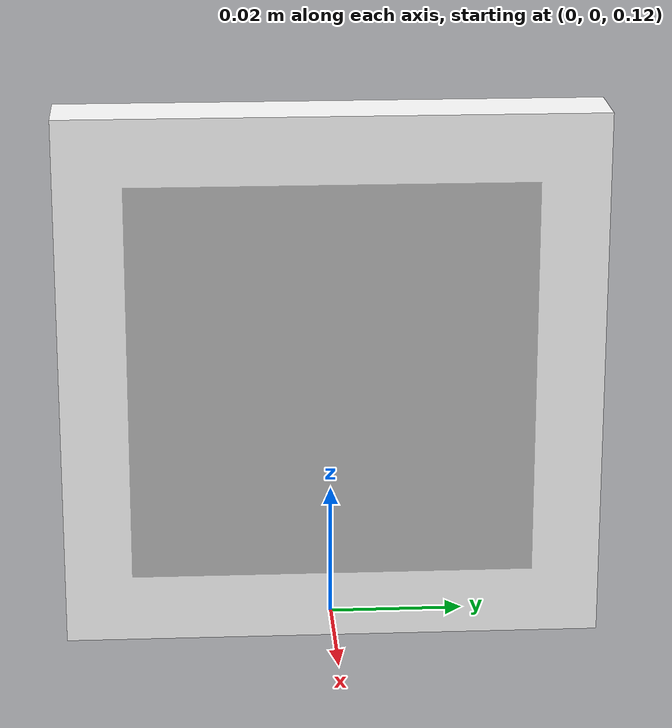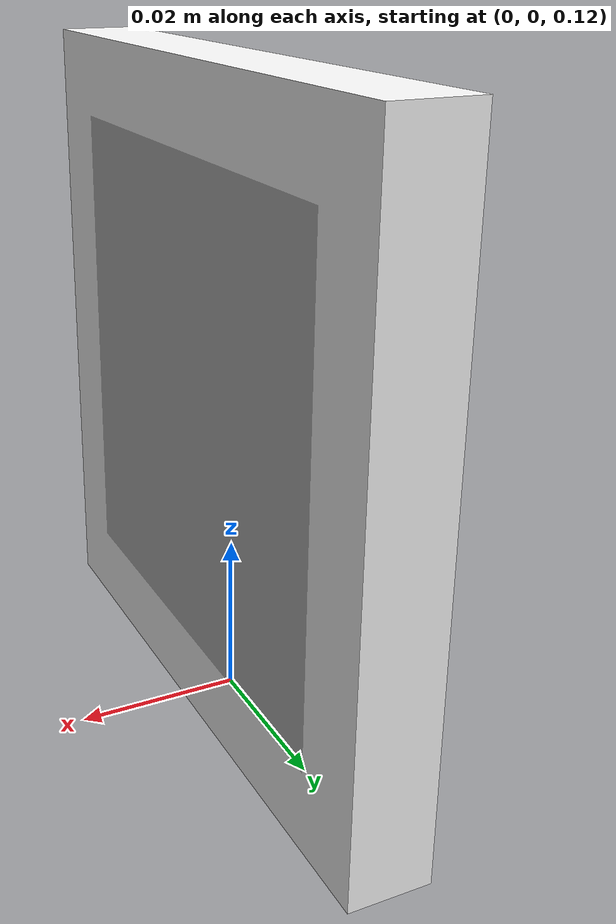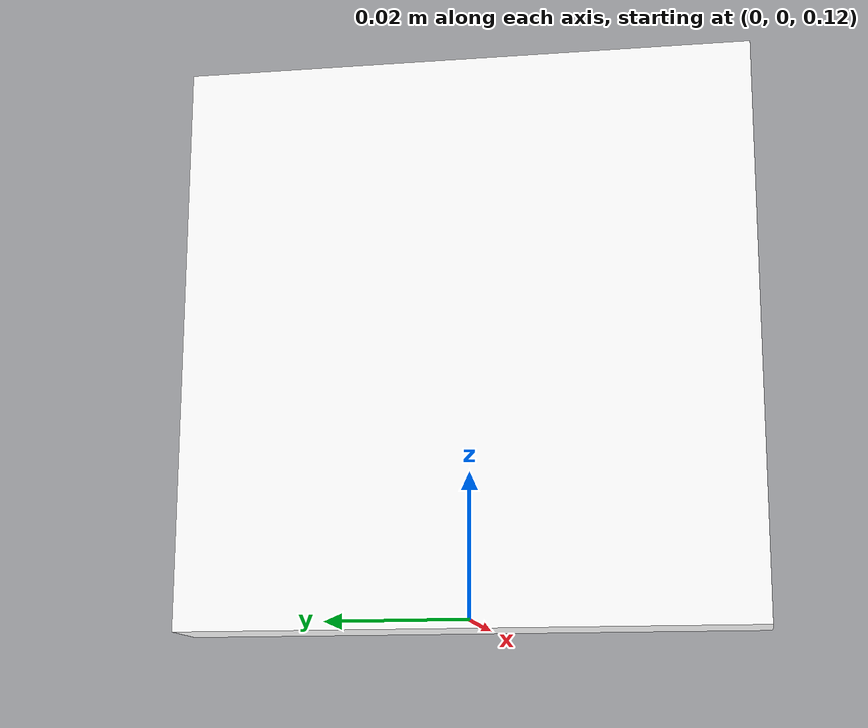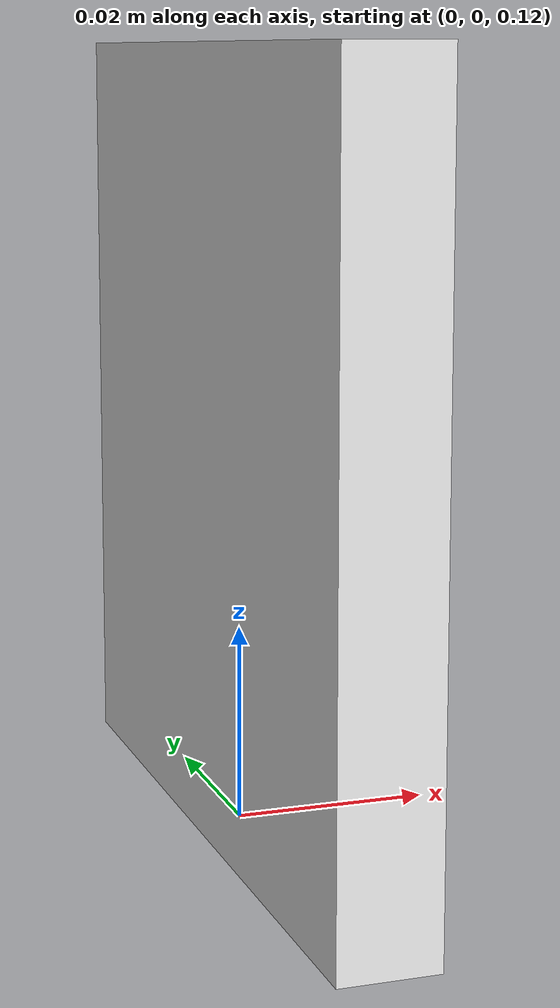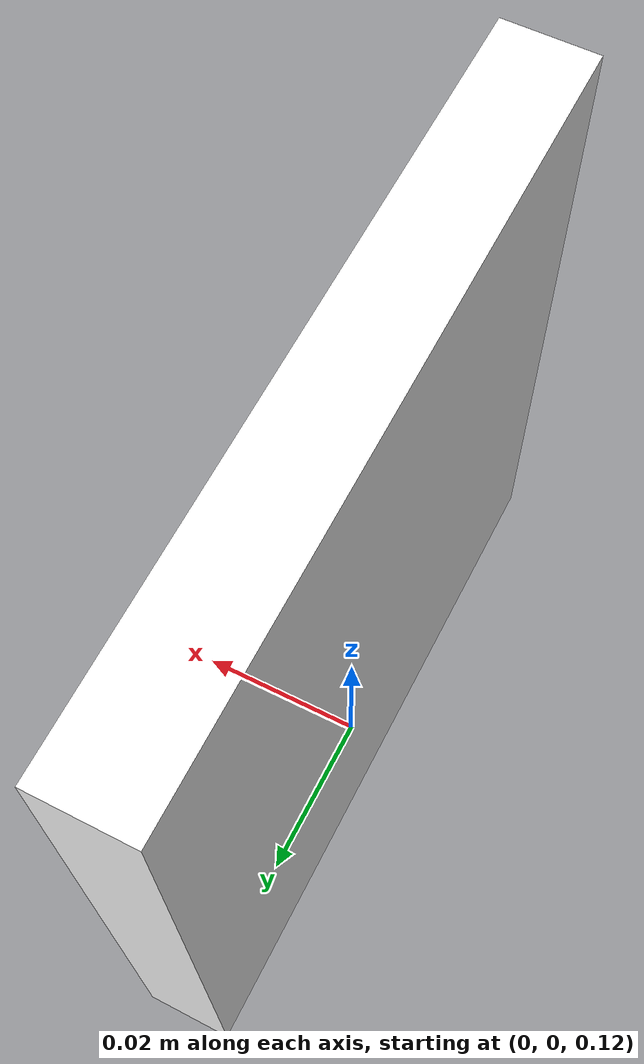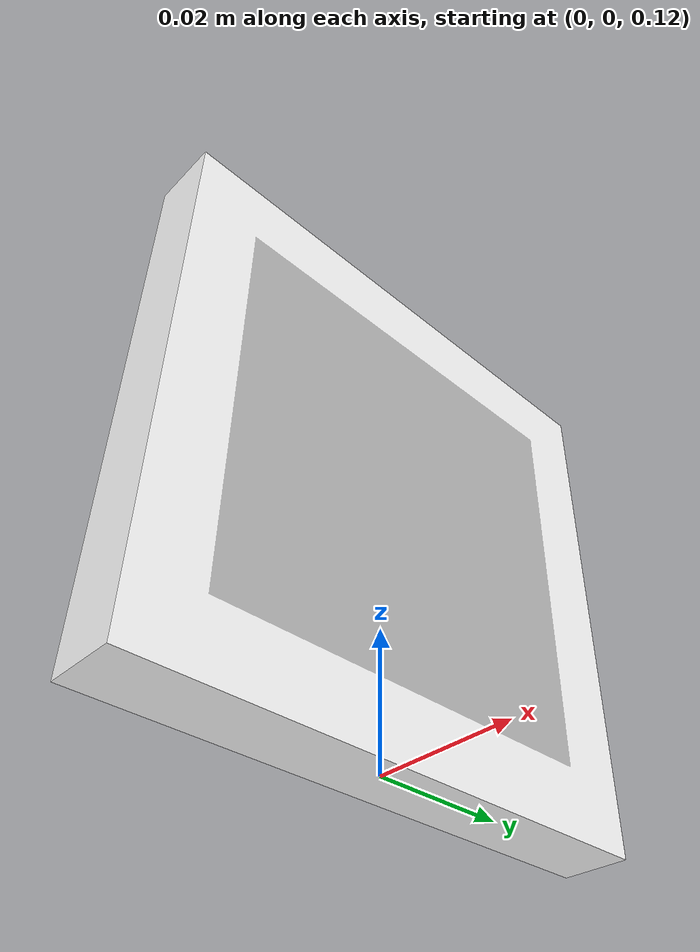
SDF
<?xml version="1.0" ?>
<sdf version="1.6">
  <model name="Qr">
	<pose>0.0 0.0 0.15 0.0 0.0 0.0</pose>
    <static>true</static>
    <link name="link">
      <collision name="collision">
        <geometry>
          <mesh>
	    <scale>1 1 1</scale>
            <uri>model://Qr/meshes/model.dae</uri>
          </mesh>
        </geometry>
      </collision>
      <visual name="visual">
        <geometry>
          <mesh>
	    <scale>1 1 1</scale>
            <uri>model://Qr/meshes/model.dae</uri>
          </mesh>
        </geometry>
      </visual>
    </link>
  </model>
</sdf>
